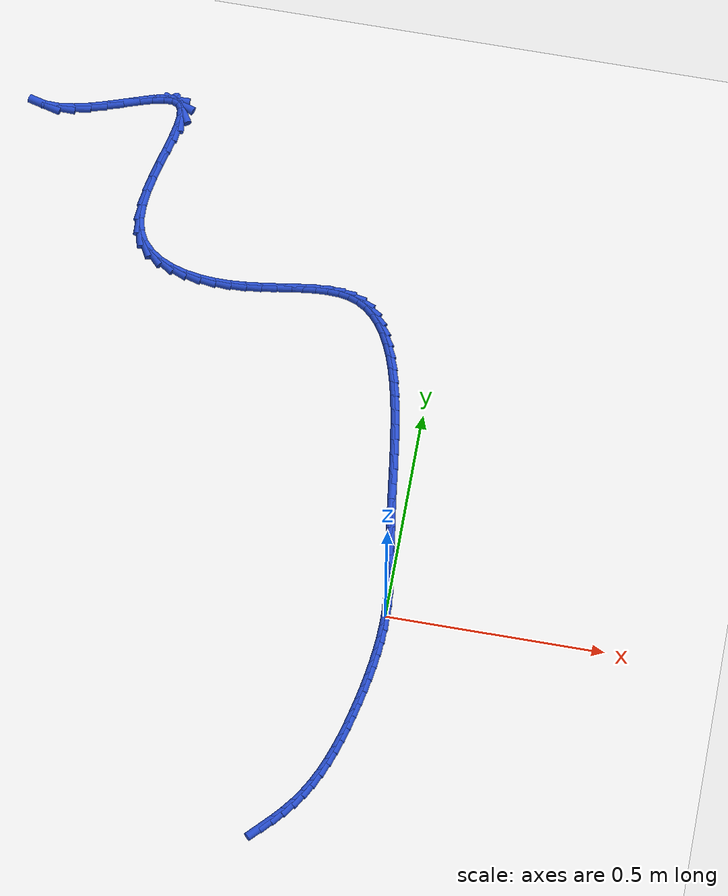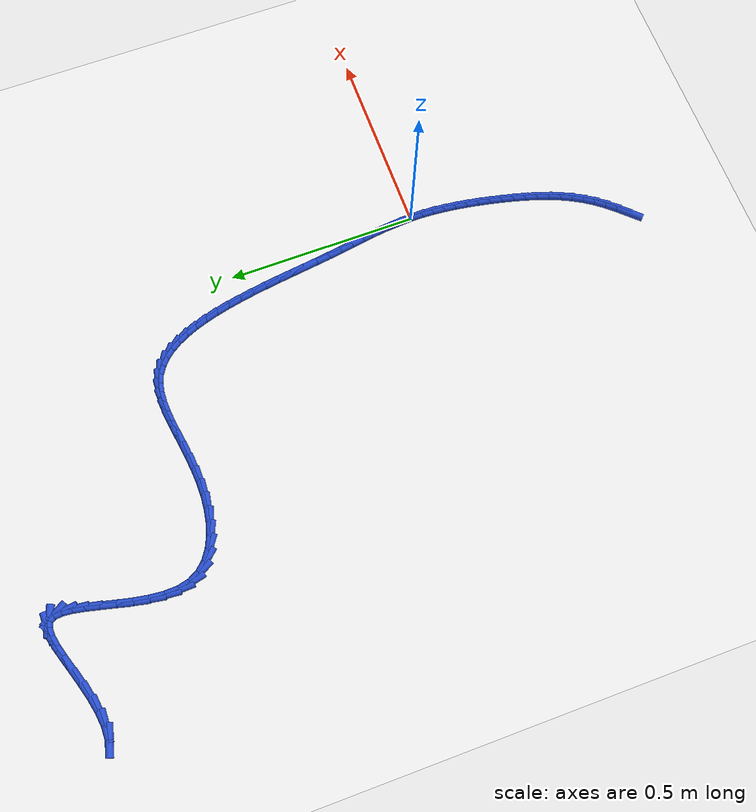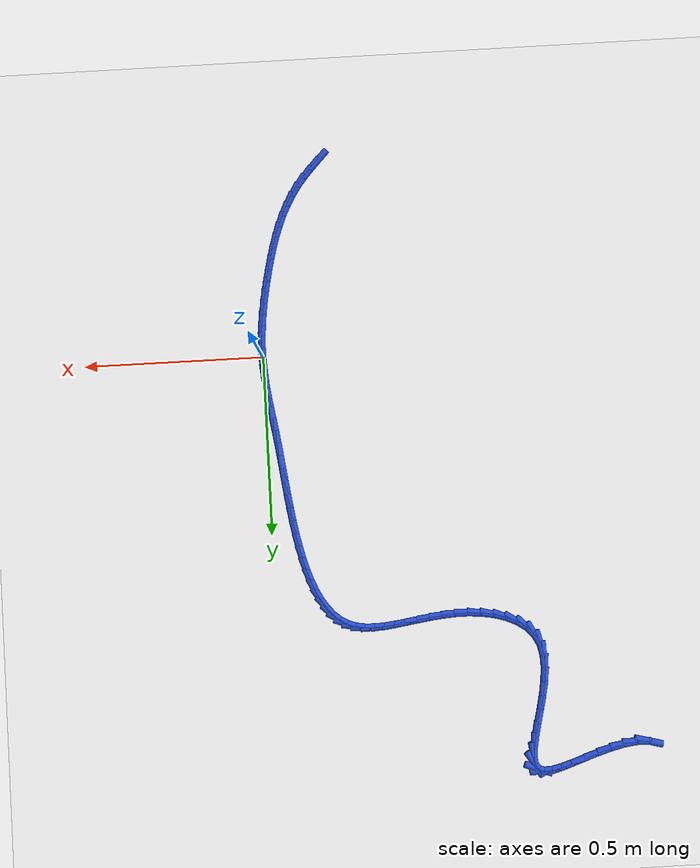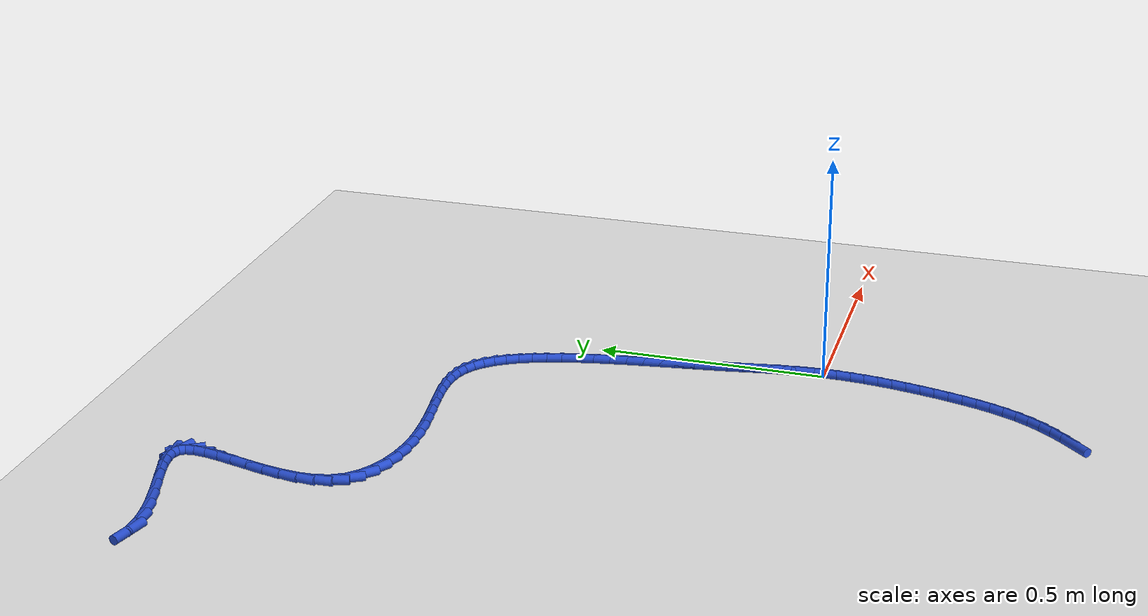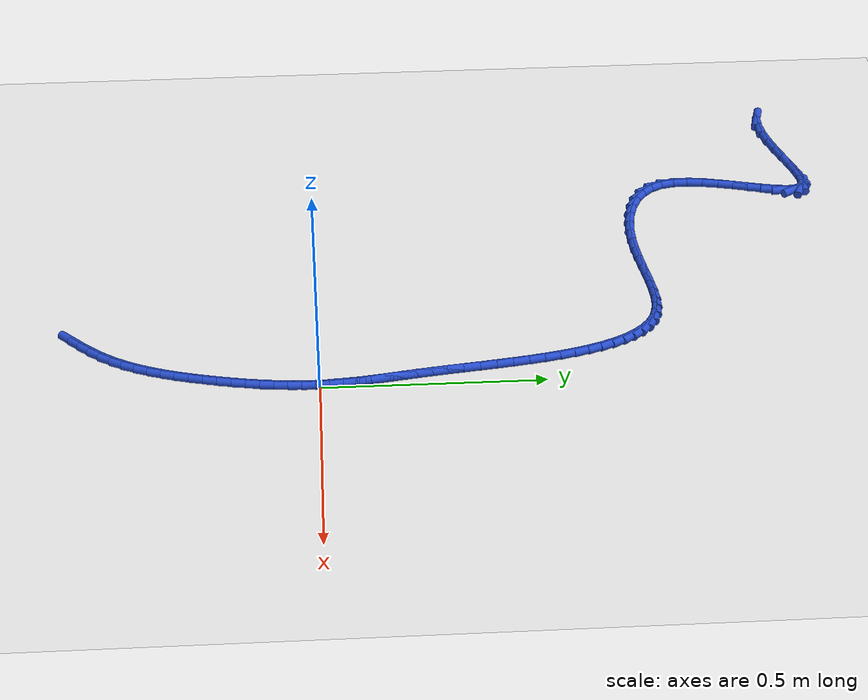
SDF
<sdf version="1.6">
 <world name="default">
  <model name="ground_plane">
   <static>1</static>
   <link name="link">
    <collision name="collision">
     <geometry><plane><normal>0 0 1</normal><size>100 100</size></plane></geometry>
     <surface><friction><ode><mu>100</mu><mu2>50</mu2></ode></friction></surface>
    </collision>
    <visual name="visual">
     <cast_shadows>0</cast_shadows>
     <geometry><plane><normal>0 0 1</normal><size>100 100</size></plane></geometry>
     <material>
      <script><uri>file://media/materials/scripts/gazebo.material</uri><name>Gazebo/WhiteGlow</name></script>
     </material>
    </visual>
   </link>
  </model>
  <model name="line">
   <link name="link_0">
    <pose>-8.673617379884035e-19 -2.7755575615628914e-17 0.01 0 1.57 -1.5309838442177583</pose>
    <collision name="collision">
     <geometry><cylinder><radius>0.01</radius><length>0.08</length></cylinder></geometry>
    </collision>
    <visual name="visual">
     <material>
      <script><name>Gazebo/Blue</name><uri>file://media/materials/scripts/gazebo.material</uri></script>
     </material>
     <geometry><cylinder><radius>0.01</radius><length>0.08</length></cylinder></geometry>
    </visual>
   </link>
   <link name="link_1">
    <pose>-0.0011920634587532983 0.029926131072168582 0.01 0 1.57 -1.4918122423101186</pose>
    <collision name="collision">
     <geometry><cylinder><radius>0.01</radius><length>0.08</length></cylinder></geometry>
    </collision>
    <visual name="visual">
     <material>
      <script><name>Gazebo/Blue</name><uri>file://media/materials/scripts/gazebo.material</uri></script>
     </material>
     <geometry><cylinder><radius>0.01</radius><length>0.08</length></cylinder></geometry>
    </visual>
   </link>
   <link name="link_2">
    <pose>-0.0035493573256430194 0.05970921789289432 0.01 0 1.57 -1.460404947082637</pose>
    <collision name="collision">
     <geometry><cylinder><radius>0.01</radius><length>0.08</length></cylinder></geometry>
    </collision>
    <visual name="visual">
     <material>
      <script><name>Gazebo/Blue</name><uri>file://media/materials/scripts/gazebo.material</uri></script>
     </material>
     <geometry><cylinder><radius>0.01</radius><length>0.08</length></cylinder></geometry>
    </visual>
   </link>
   <link name="link_3">
    <pose>-0.006859490911630981 0.08957275082644263 0.01 0 1.57 -1.4373247160159335</pose>
    <collision name="collision">
     <geometry><cylinder><radius>0.01</radius><length>0.08</length></cylinder></geometry>
    </collision>
    <visual name="visual">
     <material>
      <script><name>Gazebo/Blue</name><uri>file://media/materials/scripts/gazebo.material</uri></script>
     </material>
     <geometry><cylinder><radius>0.01</radius><length>0.08</length></cylinder></geometry>
    </visual>
   </link>
   <link name="link_4">
    <pose>-0.010910073527679004 0.11974022023707893 0.01 0 1.57 -1.4227219335134345</pose>
    <collision name="collision">
     <geometry><cylinder><radius>0.01</radius><length>0.08</length></cylinder></geometry>
    </collision>
    <visual name="visual">
     <material>
      <script><name>Gazebo/Blue</name><uri>file://media/materials/scripts/gazebo.material</uri></script>
     </material>
     <geometry><cylinder><radius>0.01</radius><length>0.08</length></cylinder></geometry>
    </visual>
   </link>
   <link name="link_5">
    <pose>-0.015488714484748891 0.15043511648906868 0.01 0 1.57 -1.4163925502797046</pose>
    <collision name="collision">
     <geometry><cylinder><radius>0.01</radius><length>0.08</length></cylinder></geometry>
    </collision>
    <visual name="visual">
     <material>
      <script><name>Gazebo/Blue</name><uri>file://media/materials/scripts/gazebo.material</uri></script>
     </material>
     <geometry><cylinder><radius>0.01</radius><length>0.08</length></cylinder></geometry>
    </visual>
   </link>
   <link name="link_6">
    <pose>-0.020383023093802466 0.18188092994667726 0.01 0 1.57 -1.4178499350377</pose>
    <collision name="collision">
     <geometry><cylinder><radius>0.01</radius><length>0.08</length></cylinder></geometry>
    </collision>
    <visual name="visual">
     <material>
      <script><name>Gazebo/Blue</name><uri>file://media/materials/scripts/gazebo.material</uri></script>
     </material>
     <geometry><cylinder><radius>0.01</radius><length>0.08</length></cylinder></geometry>
    </visual>
   </link>
   <link name="link_7">
    <pose>-0.025380608665801545 0.2143011509741702 0.01 0 1.57 -1.4263627147588707</pose>
    <collision name="collision">
     <geometry><cylinder><radius>0.01</radius><length>0.08</length></cylinder></geometry>
    </collision>
    <visual name="visual">
     <material>
      <script><name>Gazebo/Blue</name><uri>file://media/materials/scripts/gazebo.material</uri></script>
     </material>
     <geometry><cylinder><radius>0.01</radius><length>0.08</length></cylinder></geometry>
    </visual>
   </link>
   <link name="link_8">
    <pose>-0.030270033205655977 0.24791782477390206 0.01 0 1.57 -1.4372842359377562</pose>
    <collision name="collision">
     <geometry><cylinder><radius>0.01</radius><length>0.08</length></cylinder></geometry>
    </collision>
    <visual name="visual">
     <material>
      <script><name>Gazebo/Blue</name><uri>file://media/materials/scripts/gazebo.material</uri></script>
     </material>
     <geometry><cylinder><radius>0.01</radius><length>0.08</length></cylinder></geometry>
    </visual>
   </link>
   <link name="link_9">
    <pose>-0.034952662818050914 0.2827818815865925 0.01 0 1.57 -1.4432561508847164</pose>
    <collision name="collision">
     <geometry><cylinder><radius>0.01</radius><length>0.08</length></cylinder></geometry>
    </collision>
    <visual name="visual">
     <material>
      <script><name>Gazebo/Blue</name><uri>file://media/materials/scripts/gazebo.material</uri></script>
     </material>
     <geometry><cylinder><radius>0.01</radius><length>0.08</length></cylinder></geometry>
    </visual>
   </link>
   <link name="link_10">
    <pose>-0.03954762887872493 0.3186139188363698 0.01 0 1.57 -1.443988752042576</pose>
    <collision name="collision">
     <geometry><cylinder><radius>0.01</radius><length>0.08</length></cylinder></geometry>
    </collision>
    <visual name="visual">
     <material>
      <script><name>Gazebo/Blue</name><uri>file://media/materials/scripts/gazebo.material</uri></script>
     </material>
     <geometry><cylinder><radius>0.01</radius><length>0.08</length></cylinder></geometry>
    </visual>
   </link>
   <link name="link_11">
    <pose>-0.04419889976410217 0.35509685816759995 0.01 0 1.57 -1.4397758154121778</pose>
    <collision name="collision">
     <geometry><cylinder><radius>0.01</radius><length>0.08</length></cylinder></geometry>
    </collision>
    <visual name="visual">
     <material>
      <script><name>Gazebo/Blue</name><uri>file://media/materials/scripts/gazebo.material</uri></script>
     </material>
     <geometry><cylinder><radius>0.01</radius><length>0.08</length></cylinder></geometry>
    </visual>
   </link>
   <link name="link_12">
    <pose>-0.04905044385060673 0.3919136212246486 0.01 0 1.57 -1.4306595569260248</pose>
    <collision name="collision">
     <geometry><cylinder><radius>0.01</radius><length>0.08</length></cylinder></geometry>
    </collision>
    <visual name="visual">
     <material>
      <script><name>Gazebo/Blue</name><uri>file://media/materials/scripts/gazebo.material</uri></script>
     </material>
     <geometry><cylinder><radius>0.01</radius><length>0.08</length></cylinder></geometry>
    </visual>
   </link>
   <link name="link_13">
    <pose>-0.05424622951466277 0.42874712965188194 0.01 0 1.57 -1.416449296171307</pose>
    <collision name="collision">
     <geometry><cylinder><radius>0.01</radius><length>0.08</length></cylinder></geometry>
    </collision>
    <visual name="visual">
     <material>
      <script><name>Gazebo/Blue</name><uri>file://media/materials/scripts/gazebo.material</uri></script>
     </material>
     <geometry><cylinder><radius>0.01</radius><length>0.08</length></cylinder></geometry>
    </visual>
   </link>
   <link name="link_14">
    <pose>-0.05993022513269442 0.4652803050936658 0.01 0 1.57 -1.3967155898508188</pose>
    <collision name="collision">
     <geometry><cylinder><radius>0.01</radius><length>0.08</length></cylinder></geometry>
    </collision>
    <visual name="visual">
     <material>
      <script><name>Gazebo/Blue</name><uri>file://media/materials/scripts/gazebo.material</uri></script>
     </material>
     <geometry><cylinder><radius>0.01</radius><length>0.08</length></cylinder></geometry>
    </visual>
   </link>
   <link name="link_15">
    <pose>-0.06624639908112581 0.5011960691943661 0.01 0 1.57 -1.3707615844870331</pose>
    <collision name="collision">
     <geometry><cylinder><radius>0.01</radius><length>0.08</length></cylinder></geometry>
    </collision>
    <visual name="visual">
     <material>
      <script><name>Gazebo/Blue</name><uri>file://media/materials/scripts/gazebo.material</uri></script>
     </material>
     <geometry><cylinder><radius>0.01</radius><length>0.08</length></cylinder></geometry>
    </visual>
   </link>
   <link name="link_16">
    <pose>-0.07333871973638105 0.5361773435983487 0.01 0 1.57 -1.3375707681272881</pose>
    <collision name="collision">
     <geometry><cylinder><radius>0.01</radius><length>0.08</length></cylinder></geometry>
    </collision>
    <visual name="visual">
     <material>
      <script><name>Gazebo/Blue</name><uri>file://media/materials/scripts/gazebo.material</uri></script>
     </material>
     <geometry><cylinder><radius>0.01</radius><length>0.08</length></cylinder></geometry>
    </visual>
   </link>
   <link name="link_17">
    <pose>-0.08135115547488428 0.5699070499499793 0.01 0 1.57 -1.2957294912012003</pose>
    <collision name="collision">
     <geometry><cylinder><radius>0.01</radius><length>0.08</length></cylinder></geometry>
    </collision>
    <visual name="visual">
     <material>
      <script><name>Gazebo/Blue</name><uri>file://media/materials/scripts/gazebo.material</uri></script>
     </material>
     <geometry><cylinder><radius>0.01</radius><length>0.08</length></cylinder></geometry>
    </visual>
   </link>
   <link name="link_18">
    <pose>-0.09042767467305962 0.602068109893624 0.01 0 1.57 -1.2433255833330956</pose>
    <collision name="collision">
     <geometry><cylinder><radius>0.01</radius><length>0.08</length></cylinder></geometry>
    </collision>
    <visual name="visual">
     <material>
      <script><name>Gazebo/Blue</name><uri>file://media/materials/scripts/gazebo.material</uri></script>
     </material>
     <geometry><cylinder><radius>0.01</radius><length>0.08</length></cylinder></geometry>
    </visual>
   </link>
   <link name="link_19">
    <pose>-0.10071224570733121 0.6323434450736488 0.01 0 1.57 -1.177836768705247</pose>
    <collision name="collision">
     <geometry><cylinder><radius>0.01</radius><length>0.08</length></cylinder></geometry>
    </collision>
    <visual name="visual">
     <material>
      <script><name>Gazebo/Blue</name><uri>file://media/materials/scripts/gazebo.material</uri></script>
     </material>
     <geometry><cylinder><radius>0.01</radius><length>0.08</length></cylinder></geometry>
    </visual>
   </link>
   <link name="link_20">
    <pose>-0.1123488369541232 0.6604159771344196 0.01 0 1.57 -1.0960574448967841</pose>
    <collision name="collision">
     <geometry><cylinder><radius>0.01</radius><length>0.08</length></cylinder></geometry>
    </collision>
    <visual name="visual">
     <material>
      <script><name>Gazebo/Blue</name><uri>file://media/materials/scripts/gazebo.material</uri></script>
     </material>
     <geometry><cylinder><radius>0.01</radius><length>0.08</length></cylinder></geometry>
    </visual>
   </link>
   <link name="link_21">
    <pose>-0.12548141678985966 0.685968627720302 0.01 0 1.57 -0.9941940548268737</pose>
    <collision name="collision">
     <geometry><cylinder><radius>0.01</radius><length>0.08</length></cylinder></geometry>
    </collision>
    <visual name="visual">
     <material>
      <script><name>Gazebo/Blue</name><uri>file://media/materials/scripts/gazebo.material</uri></script>
     </material>
     <geometry><cylinder><radius>0.01</radius><length>0.08</length></cylinder></geometry>
    </visual>
   </link>
   <link name="link_22">
    <pose>-0.1402539535909648 0.7086843184756622 0.01 0 1.57 -0.8684114697376889</pose>
    <collision name="collision">
     <geometry><cylinder><radius>0.01</radius><length>0.08</length></cylinder></geometry>
    </collision>
    <visual name="visual">
     <material>
      <script><name>Gazebo/Blue</name><uri>file://media/materials/scripts/gazebo.material</uri></script>
     </material>
     <geometry><cylinder><radius>0.01</radius><length>0.08</length></cylinder></geometry>
    </visual>
   </link>
   <link name="link_23">
    <pose>-0.15681041573386267 0.7282459710448659 0.01 0 1.57 -0.716272689196708</pose>
    <collision name="collision">
     <geometry><cylinder><radius>0.01</radius><length>0.08</length></cylinder></geometry>
    </collision>
    <visual name="visual">
     <material>
      <script><name>Gazebo/Blue</name><uri>file://media/materials/scripts/gazebo.material</uri></script>
     </material>
     <geometry><cylinder><radius>0.01</radius><length>0.08</length></cylinder></geometry>
    </visual>
   </link>
   <link name="link_24">
    <pose>-0.17529477159497744 0.7443365070722793 0.01 0 1.57 -0.5392959390188768</pose>
    <collision name="collision">
     <geometry><cylinder><radius>0.01</radius><length>0.08</length></cylinder></geometry>
    </collision>
    <visual name="visual">
     <material>
      <script><name>Gazebo/Blue</name><uri>file://media/materials/scripts/gazebo.material</uri></script>
     </material>
     <geometry><cylinder><radius>0.01</radius><length>0.08</length></cylinder></geometry>
    </visual>
   </link>
   <link name="link_25">
    <pose>-0.19585098955073327 0.756638848202268 0.01 0 1.57 -0.34677644705494926</pose>
    <collision name="collision">
     <geometry><cylinder><radius>0.01</radius><length>0.08</length></cylinder></geometry>
    </collision>
    <visual name="visual">
     <material>
      <script><name>Gazebo/Blue</name><uri>file://media/materials/scripts/gazebo.material</uri></script>
     </material>
     <geometry><cylinder><radius>0.01</radius><length>0.08</length></cylinder></geometry>
    </visual>
   </link>
   <link name="link_26">
    <pose>-0.21861303366019633 0.7648645888249331 0.01 0 1.57 -0.17357291917160803</pose>
    <collision name="collision">
     <geometry><cylinder><radius>0.01</radius><length>0.08</length></cylinder></geometry>
    </collision>
    <visual name="visual">
     <material>
      <script><name>Gazebo/Blue</name><uri>file://media/materials/scripts/gazebo.material</uri></script>
     </material>
     <geometry><cylinder><radius>0.01</radius><length>0.08</length></cylinder></geometry>
    </visual>
   </link>
   <link name="link_27">
    <pose>-0.24353713478854908 0.7692347132762082 0.01 0 1.57 -0.043605174973667386</pose>
    <collision name="collision">
     <geometry><cylinder><radius>0.01</radius><length>0.08</length></cylinder></geometry>
    </collision>
    <visual name="visual">
     <material>
      <script><name>Gazebo/Blue</name><uri>file://media/materials/scripts/gazebo.material</uri></script>
     </material>
     <geometry><cylinder><radius>0.01</radius><length>0.08</length></cylinder></geometry>
    </visual>
   </link>
   <link name="link_28">
    <pose>-0.2704267767794843 0.7704079845382207 0.01 0 1.57 0.04709943094118942</pose>
    <collision name="collision">
     <geometry><cylinder><radius>0.01</radius><length>0.08</length></cylinder></geometry>
    </collision>
    <visual name="visual">
     <material>
      <script><name>Gazebo/Blue</name><uri>file://media/materials/scripts/gazebo.material</uri></script>
     </material>
     <geometry><cylinder><radius>0.01</radius><length>0.08</length></cylinder></geometry>
    </visual>
   </link>
   <link name="link_29">
    <pose>-0.2990804723767562 0.7690574129504607 0.01 0 1.57 0.10555591531187349</pose>
    <collision name="collision">
     <geometry><cylinder><radius>0.01</radius><length>0.08</length></cylinder></geometry>
    </collision>
    <visual name="visual">
     <material>
      <script><name>Gazebo/Blue</name><uri>file://media/materials/scripts/gazebo.material</uri></script>
     </material>
     <geometry><cylinder><radius>0.01</radius><length>0.08</length></cylinder></geometry>
    </visual>
   </link>
   <link name="link_30">
    <pose>-0.32929673432411916 0.7658560088524181 0.01 0 1.57 0.13780358688289648</pose>
    <collision name="collision">
     <geometry><cylinder><radius>0.01</radius><length>0.08</length></cylinder></geometry>
    </collision>
    <visual name="visual">
     <material>
      <script><name>Gazebo/Blue</name><uri>file://media/materials/scripts/gazebo.material</uri></script>
     </material>
     <geometry><cylinder><radius>0.01</radius><length>0.08</length></cylinder></geometry>
    </visual>
   </link>
   <link name="link_31">
    <pose>-0.36087407536532773 0.7614767825835832 0.01 0 1.57 0.14809812832370803</pose>
    <collision name="collision">
     <geometry><cylinder><radius>0.01</radius><length>0.08</length></cylinder></geometry>
    </collision>
    <visual name="visual">
     <material>
      <script><name>Gazebo/Blue</name><uri>file://media/materials/scripts/gazebo.material</uri></script>
     </material>
     <geometry><cylinder><radius>0.01</radius><length>0.08</length></cylinder></geometry>
    </visual>
   </link>
   <link name="link_32">
    <pose>-0.393611008244136 0.7565927444834457 0.01 0 1.57 0.1390532798144031</pose>
    <collision name="collision">
     <geometry><cylinder><radius>0.01</radius><length>0.08</length></cylinder></geometry>
    </collision>
    <visual name="visual">
     <material>
      <script><name>Gazebo/Blue</name><uri>file://media/materials/scripts/gazebo.material</uri></script>
     </material>
     <geometry><cylinder><radius>0.01</radius><length>0.08</length></cylinder></geometry>
    </visual>
   </link>
   <link name="link_33">
    <pose>-0.4273060457042981 0.7518769048914955 0.01 0 1.57 0.11199512746065339</pose>
    <collision name="collision">
     <geometry><cylinder><radius>0.01</radius><length>0.08</length></cylinder></geometry>
    </collision>
    <visual name="visual">
     <material>
      <script><name>Gazebo/Blue</name><uri>file://media/materials/scripts/gazebo.material</uri></script>
     </material>
     <geometry><cylinder><radius>0.01</radius><length>0.08</length></cylinder></geometry>
    </visual>
   </link>
   <link name="link_34">
    <pose>-0.4617577004895692 0.748002274147223 0.01 0 1.57 0.06732535251456545</pose>
    <collision name="collision">
     <geometry><cylinder><radius>0.01</radius><length>0.08</length></cylinder></geometry>
    </collision>
    <visual name="visual">
     <material>
      <script><name>Gazebo/Blue</name><uri>file://media/materials/scripts/gazebo.material</uri></script>
     </material>
     <geometry><cylinder><radius>0.01</radius><length>0.08</length></cylinder></geometry>
    </visual>
   </link>
   <link name="link_35">
    <pose>-0.4967644853437031 0.7456418625901178 0.01 0 1.57 0.004897583462820806</pose>
    <collision name="collision">
     <geometry><cylinder><radius>0.01</radius><length>0.08</length></cylinder></geometry>
    </collision>
    <visual name="visual">
     <material>
      <script><name>Gazebo/Blue</name><uri>file://media/materials/scripts/gazebo.material</uri></script>
     </material>
     <geometry><cylinder><radius>0.01</radius><length>0.08</length></cylinder></geometry>
    </visual>
   </link>
   <link name="link_36">
    <pose>-0.532124913010454 0.7454686805596699 0.01 0 1.57 -0.0751768790568628</pose>
    <collision name="collision">
     <geometry><cylinder><radius>0.01</radius><length>0.08</length></cylinder></geometry>
    </collision>
    <visual name="visual">
     <material>
      <script><name>Gazebo/Blue</name><uri>file://media/materials/scripts/gazebo.material</uri></script>
     </material>
     <geometry><cylinder><radius>0.01</radius><length>0.08</length></cylinder></geometry>
    </visual>
   </link>
   <link name="link_37">
    <pose>-0.5676006343412286 0.7481406701083774 0.01 0 1.57 -0.16946726879782714</pose>
    <collision name="collision">
     <geometry><cylinder><radius>0.01</radius><length>0.08</length></cylinder></geometry>
    </collision>
    <visual name="visual">
     <material>
      <script><name>Gazebo/Blue</name><uri>file://media/materials/scripts/gazebo.material</uri></script>
     </material>
     <geometry><cylinder><radius>0.01</radius><length>0.08</length></cylinder></geometry>
    </visual>
   </link>
   <link name="link_38">
    <pose>-0.6024233030745086 0.7540991227563392 0.01 0 1.57 -0.2809337188770969</pose>
    <collision name="collision">
     <geometry><cylinder><radius>0.01</radius><length>0.08</length></cylinder></geometry>
    </collision>
    <visual name="visual">
     <material>
      <script><name>Gazebo/Blue</name><uri>file://media/materials/scripts/gazebo.material</uri></script>
     </material>
     <geometry><cylinder><radius>0.01</radius><length>0.08</length></cylinder></geometry>
    </visual>
   </link>
   <link name="link_39">
    <pose>-0.6354273361624305 0.7636229488348666 0.01 0 1.57 -0.41895626845242995</pose>
    <collision name="collision">
     <geometry><cylinder><radius>0.01</radius><length>0.08</length></cylinder></geometry>
    </collision>
    <visual name="visual">
     <material>
      <script><name>Gazebo/Blue</name><uri>file://media/materials/scripts/gazebo.material</uri></script>
     </material>
     <geometry><cylinder><radius>0.01</radius><length>0.08</length></cylinder></geometry>
    </visual>
   </link>
   <link name="link_40">
    <pose>-0.665437534666611 0.7769871279221601 0.01 0 1.57 -0.5947253696957779</pose>
    <collision name="collision">
     <geometry><cylinder><radius>0.01</radius><length>0.08</length></cylinder></geometry>
    </collision>
    <visual name="visual">
     <material>
      <script><name>Gazebo/Blue</name><uri>file://media/materials/scripts/gazebo.material</uri></script>
     </material>
     <geometry><cylinder><radius>0.01</radius><length>0.08</length></cylinder></geometry>
    </visual>
   </link>
   <link name="link_41">
    <pose>-0.6912786996486677 0.7944666395964205 0.01 0 1.57 -0.8177917471947918</pose>
    <collision name="collision">
     <geometry><cylinder><radius>0.01</radius><length>0.08</length></cylinder></geometry>
    </collision>
    <visual name="visual">
     <material>
      <script><name>Gazebo/Blue</name><uri>file://media/materials/scripts/gazebo.material</uri></script>
     </material>
     <geometry><cylinder><radius>0.01</radius><length>0.08</length></cylinder></geometry>
    </visual>
   </link>
   <link name="link_42">
    <pose>-0.7117756321702178 0.8163364634358485 0.01 0 1.57 -1.0858686030148896</pose>
    <collision name="collision">
     <geometry><cylinder><radius>0.01</radius><length>0.08</length></cylinder></geometry>
    </collision>
    <visual name="visual">
     <material>
      <script><name>Gazebo/Blue</name><uri>file://media/materials/scripts/gazebo.material</uri></script>
     </material>
     <geometry><cylinder><radius>0.01</radius><length>0.08</length></cylinder></geometry>
    </visual>
   </link>
   <link name="link_43">
    <pose>-0.7257558929972162 0.842869994935702 0.01 0 1.57 -1.349795668924358</pose>
    <collision name="collision">
     <geometry><cylinder><radius>0.01</radius><length>0.08</length></cylinder></geometry>
    </collision>
    <visual name="visual">
     <material>
      <script><name>Gazebo/Blue</name><uri>file://media/materials/scripts/gazebo.material</uri></script>
     </material>
     <geometry><cylinder><radius>0.01</radius><length>0.08</length></cylinder></geometry>
    </visual>
   </link>
   <link name="link_44">
    <pose>-0.7327373839717425 0.8739443706485378 0.01 0 1.57 -1.5391064750870342</pose>
    <collision name="collision">
     <geometry><cylinder><radius>0.01</radius><length>0.08</length></cylinder></geometry>
    </collision>
    <visual name="visual">
     <material>
      <script><name>Gazebo/Blue</name><uri>file://media/materials/scripts/gazebo.material</uri></script>
     </material>
     <geometry><cylinder><radius>0.01</radius><length>0.08</length></cylinder></geometry>
    </visual>
   </link>
   <link name="link_45">
    <pose>-0.7338334766400432 0.9085209202019734 0.01 0 1.57 1.4775661834523324</pose>
    <collision name="collision">
     <geometry><cylinder><radius>0.01</radius><length>0.08</length></cylinder></geometry>
    </collision>
    <visual name="visual">
     <material>
      <script><name>Gazebo/Blue</name><uri>file://media/materials/scripts/gazebo.material</uri></script>
     </material>
     <geometry><cylinder><radius>0.01</radius><length>0.08</length></cylinder></geometry>
    </visual>
   </link>
   <link name="link_46">
    <pose>-0.7303822471487614 0.9454319917527966 0.01 0 1.57 1.3976312926035983</pose>
    <collision name="collision">
     <geometry><cylinder><radius>0.01</radius><length>0.08</length></cylinder></geometry>
    </collision>
    <visual name="visual">
     <material>
      <script><name>Gazebo/Blue</name><uri>file://media/materials/scripts/gazebo.material</uri></script>
     </material>
     <geometry><cylinder><radius>0.01</radius><length>0.08</length></cylinder></geometry>
    </visual>
   </link>
   <link name="link_47">
    <pose>-0.7237217716445401 0.9835099334577941 0.01 0 1.57 1.3503748469150667</pose>
    <collision name="collision">
     <geometry><cylinder><radius>0.01</radius><length>0.08</length></cylinder></geometry>
    </collision>
    <visual name="visual">
     <material>
      <script><name>Gazebo/Blue</name><uri>file://media/materials/scripts/gazebo.material</uri></script>
     </material>
     <geometry><cylinder><radius>0.01</radius><length>0.08</length></cylinder></geometry>
    </visual>
   </link>
   <link name="link_48">
    <pose>-0.7151901262740218 1.0215870934737539 0.01 0 1.57 1.329964235913607</pose>
    <collision name="collision">
     <geometry><cylinder><radius>0.01</radius><length>0.08</length></cylinder></geometry>
    </collision>
    <visual name="visual">
     <material>
      <script><name>Gazebo/Blue</name><uri>file://media/materials/scripts/gazebo.material</uri></script>
     </material>
     <geometry><cylinder><radius>0.01</radius><length>0.08</length></cylinder></geometry>
    </visual>
   </link>
   <link name="link_49">
    <pose>-0.7061253871838494 1.0584958199574621 0.01 0 1.57 1.3362820452198823</pose>
    <collision name="collision">
     <geometry><cylinder><radius>0.01</radius><length>0.08</length></cylinder></geometry>
    </collision>
    <visual name="visual">
     <material>
      <script><name>Gazebo/Blue</name><uri>file://media/materials/scripts/gazebo.material</uri></script>
     </material>
     <geometry><cylinder><radius>0.01</radius><length>0.08</length></cylinder></geometry>
    </visual>
   </link>
   <link name="link_50">
    <pose>-0.6978656305206656 1.0930684610657073 0.01 0 1.57 1.3764071358228145</pose>
    <collision name="collision">
     <geometry><cylinder><radius>0.01</radius><length>0.08</length></cylinder></geometry>
    </collision>
    <visual name="visual">
     <material>
      <script><name>Gazebo/Blue</name><uri>file://media/materials/scripts/gazebo.material</uri></script>
     </material>
     <geometry><cylinder><radius>0.01</radius><length>0.08</length></cylinder></geometry>
    </visual>
   </link>
   <link name="link_51">
    <pose>-0.6917489324311131 1.1241373649552766 0.01 0 1.57 1.4712847615201314</pose>
    <collision name="collision">
     <geometry><cylinder><radius>0.01</radius><length>0.08</length></cylinder></geometry>
    </collision>
    <visual name="visual">
     <material>
      <script><name>Gazebo/Blue</name><uri>file://media/materials/scripts/gazebo.material</uri></script>
     </material>
     <geometry><cylinder><radius>0.01</radius><length>0.08</length></cylinder></geometry>
    </visual>
   </link>
   <link name="link_52">
    <pose>-0.689113369061835 1.1505348797829569 0.01 0 1.57 -1.4649766666540844</pose>
    <collision name="collision">
     <geometry><cylinder><radius>0.01</radius><length>0.08</length></cylinder></geometry>
    </collision>
    <visual name="visual">
     <material>
      <script><name>Gazebo/Blue</name><uri>file://media/materials/scripts/gazebo.material</uri></script>
     </material>
     <geometry><cylinder><radius>0.01</radius><length>0.08</length></cylinder></geometry>
    </visual>
   </link>
   <link name="link_53">
    <pose>-0.6912970165594738 1.1710933537055352 0.01 0 1.57 -1.0190676660068214</pose>
    <collision name="collision">
     <geometry><cylinder><radius>0.01</radius><length>0.08</length></cylinder></geometry>
    </collision>
    <visual name="visual">
     <material>
      <script><name>Gazebo/Blue</name><uri>file://media/materials/scripts/gazebo.material</uri></script>
     </material>
     <geometry><cylinder><radius>0.01</radius><length>0.08</length></cylinder></geometry>
    </visual>
   </link>
   <link name="link_54">
    <pose>-0.6996379509443508 1.1846451350189793 0.01 0 1.57 -0.36168302062955593</pose>
    <collision name="collision">
     <geometry><cylinder><radius>0.01</radius><length>0.08</length></cylinder></geometry>
    </collision>
    <visual name="visual">
     <material>
      <script><name>Gazebo/Blue</name><uri>file://media/materials/scripts/gazebo.material</uri></script>
     </material>
     <geometry><cylinder><radius>0.01</radius><length>0.08</length></cylinder></geometry>
    </visual>
   </link>
   <link name="link_55">
    <pose>-0.7150595227192715 1.1904795095031495 0.01 0 1.57 0.0368072957396625</pose>
    <collision name="collision">
     <geometry><cylinder><radius>0.01</radius><length>0.08</length></cylinder></geometry>
    </collision>
    <visual name="visual">
     <material>
      <script><name>Gazebo/Blue</name><uri>file://media/materials/scripts/gazebo.material</uri></script>
     </material>
     <geometry><cylinder><radius>0.01</radius><length>0.08</length></cylinder></geometry>
    </visual>
   </link>
   <link name="link_56">
    <pose>-0.7368595498400109 1.1896767469035965 0.01 0 1.57 0.21527165208525095</pose>
    <collision name="collision">
     <geometry><cylinder><radius>0.01</radius><length>0.08</length></cylinder></geometry>
    </collision>
    <visual name="visual">
     <material>
      <script><name>Gazebo/Blue</name><uri>file://media/materials/scripts/gazebo.material</uri></script>
     </material>
     <geometry><cylinder><radius>0.01</radius><length>0.08</length></cylinder></geometry>
    </visual>
   </link>
   <link name="link_57">
    <pose>-0.7639376423660004 1.1837558556171897 0.01 0 1.57 0.29565711391072097</pose>
    <collision name="collision">
     <geometry><cylinder><radius>0.01</radius><length>0.08</length></cylinder></geometry>
    </collision>
    <visual name="visual">
     <material>
      <script><name>Gazebo/Blue</name><uri>file://media/materials/scripts/gazebo.material</uri></script>
     </material>
     <geometry><cylinder><radius>0.01</radius><length>0.08</length></cylinder></geometry>
    </visual>
   </link>
   <link name="link_58">
    <pose>-0.7951934103566707 1.1742358440407985 0.01 0 1.57 0.3258283661167217</pose>
    <collision name="collision">
     <geometry><cylinder><radius>0.01</radius><length>0.08</length></cylinder></geometry>
    </collision>
    <visual name="visual">
     <material>
      <script><name>Gazebo/Blue</name><uri>file://media/materials/scripts/gazebo.material</uri></script>
     </material>
     <geometry><cylinder><radius>0.01</radius><length>0.08</length></cylinder></geometry>
    </visual>
   </link>
   <link name="link_59">
    <pose>-0.8295264638714522 1.1626357205712932 0.01 0 1.57 0.32318527351842097</pose>
    <collision name="collision">
     <geometry><cylinder><radius>0.01</radius><length>0.08</length></cylinder></geometry>
    </collision>
    <visual name="visual">
     <material>
      <script><name>Gazebo/Blue</name><uri>file://media/materials/scripts/gazebo.material</uri></script>
     </material>
     <geometry><cylinder><radius>0.01</radius><length>0.08</length></cylinder></geometry>
    </visual>
   </link>
   <link name="link_60">
    <pose>-0.8658364129697762 1.1504744936055442 0.01 0 1.57 0.29262544058438467</pose>
    <collision name="collision">
     <geometry><cylinder><radius>0.01</radius><length>0.08</length></cylinder></geometry>
    </collision>
    <visual name="visual">
     <material>
      <script><name>Gazebo/Blue</name><uri>file://media/materials/scripts/gazebo.material</uri></script>
     </material>
     <geometry><cylinder><radius>0.01</radius><length>0.08</length></cylinder></geometry>
    </visual>
   </link>
   <link name="link_61">
    <pose>-0.9030228677110735 1.139271171540421 0.01 0 1.57 0.23184249930451575</pose>
    <collision name="collision">
     <geometry><cylinder><radius>0.01</radius><length>0.08</length></cylinder></geometry>
    </collision>
    <visual name="visual">
     <material>
      <script><name>Gazebo/Blue</name><uri>file://media/materials/scripts/gazebo.material</uri></script>
     </material>
     <geometry><cylinder><radius>0.01</radius><length>0.08</length></cylinder></geometry>
    </visual>
   </link>
   <link name="link_62">
    <pose>-0.9399854381547748 1.1305447627727925 0.01 0 1.57 0.13196464720542928</pose>
    <collision name="collision">
     <geometry><cylinder><radius>0.01</radius><length>0.08</length></cylinder></geometry>
    </collision>
    <visual name="visual">
     <material>
      <script><name>Gazebo/Blue</name><uri>file://media/materials/scripts/gazebo.material</uri></script>
     </material>
     <geometry><cylinder><radius>0.01</radius><length>0.08</length></cylinder></geometry>
    </visual>
   </link>
   <link name="link_63">
    <pose>-0.9756237343603114 1.1258142756995302 0.01 0 1.57 -0.023613714036213106</pose>
    <collision name="collision">
     <geometry><cylinder><radius>0.01</radius><length>0.08</length></cylinder></geometry>
    </collision>
    <visual name="visual">
     <material>
      <script><name>Gazebo/Blue</name><uri>file://media/materials/scripts/gazebo.material</uri></script>
     </material>
     <geometry><cylinder><radius>0.01</radius><length>0.08</length></cylinder></geometry>
    </visual>
   </link>
   <link name="link_64">
    <pose>-1.0088373663871133 1.126598718717503 0.01 0 1.57 -0.2575000470416673</pose>
    <collision name="collision">
     <geometry><cylinder><radius>0.01</radius><length>0.08</length></cylinder></geometry>
    </collision>
    <visual name="visual">
     <material>
      <script><name>Gazebo/Blue</name><uri>file://media/materials/scripts/gazebo.material</uri></script>
     </material>
     <geometry><cylinder><radius>0.01</radius><length>0.08</length></cylinder></geometry>
    </visual>
   </link>
   <link name="link_241">
    <pose>-0.1836506238045549 -0.5474512371954787 0.01 0 1.57 0.8121200580890915</pose>
    <collision name="collision">
     <geometry><cylinder><radius>0.01</radius><length>0.08</length></cylinder></geometry>
    </collision>
    <visual name="visual">
     <material>
      <script><name>Gazebo/Blue</name><uri>file://media/materials/scripts/gazebo.material</uri></script>
     </material>
     <geometry><cylinder><radius>0.01</radius><length>0.08</length></cylinder></geometry>
    </visual>
   </link>
   <link name="link_242">
    <pose>-0.1622899798363245 -0.5249173694436388 0.01 0 1.57 0.8552882020870788</pose>
    <collision name="collision">
     <geometry><cylinder><radius>0.01</radius><length>0.08</length></cylinder></geometry>
    </collision>
    <visual name="visual">
     <material>
      <script><name>Gazebo/Blue</name><uri>file://media/materials/scripts/gazebo.material</uri></script>
     </material>
     <geometry><cylinder><radius>0.01</radius><length>0.08</length></cylinder></geometry>
    </visual>
   </link>
   <link name="link_243">
    <pose>-0.14206756557597322 -0.5016505310700735 0.01 0 1.57 0.912782444179072</pose>
    <collision name="collision">
     <geometry><cylinder><radius>0.01</radius><length>0.08</length></cylinder></geometry>
    </collision>
    <visual name="visual">
     <material>
      <script><name>Gazebo/Blue</name><uri>file://media/materials/scripts/gazebo.material</uri></script>
     </material>
     <geometry><cylinder><radius>0.01</radius><length>0.08</length></cylinder></geometry>
    </visual>
   </link>
   <link name="link_244">
    <pose>-0.12332633311077575 -0.477403450290131 0.01 0 1.57 0.9841468917848708</pose>
    <collision name="collision">
     <geometry><cylinder><radius>0.01</radius><length>0.08</length></cylinder></geometry>
    </collision>
    <visual name="visual">
     <material>
      <script><name>Gazebo/Blue</name><uri>file://media/materials/scripts/gazebo.material</uri></script>
     </material>
     <geometry><cylinder><radius>0.01</radius><length>0.08</length></cylinder></geometry>
    </visual>
   </link>
   <link name="link_245">
    <pose>-0.1063985296049775 -0.4519371485172997 0.01 0 1.57 1.0584636511911167</pose>
    <collision name="collision">
     <geometry><cylinder><radius>0.01</radius><length>0.08</length></cylinder></geometry>
    </collision>
    <visual name="visual">
     <material>
      <script><name>Gazebo/Blue</name><uri>file://media/materials/scripts/gazebo.material</uri></script>
     </material>
     <geometry><cylinder><radius>0.01</radius><length>0.08</length></cylinder></geometry>
    </visual>
   </link>
   <link name="link_246">
    <pose>-0.09136503489739779 -0.42520738364569105 0.01 0 1.57 1.1247622820728778</pose>
    <collision name="collision">
     <geometry><cylinder><radius>0.01</radius><length>0.08</length></cylinder></geometry>
    </collision>
    <visual name="visual">
     <material>
      <script><name>Gazebo/Blue</name><uri>file://media/materials/scripts/gazebo.material</uri></script>
     </material>
     <geometry><cylinder><radius>0.01</radius><length>0.08</length></cylinder></geometry>
    </visual>
   </link>
   <link name="link_247">
    <pose>-0.07805246432831235 -0.3973668945155597 0.01 0 1.57 1.1825163604227003</pose>
    <collision name="collision">
     <geometry><cylinder><radius>0.01</radius><length>0.08</length></cylinder></geometry>
    </collision>
    <visual name="visual">
     <material>
      <script><name>Gazebo/Blue</name><uri>file://media/materials/scripts/gazebo.material</uri></script>
     </material>
     <geometry><cylinder><radius>0.01</radius><length>0.08</length></cylinder></geometry>
    </visual>
   </link>
   <link name="link_248">
    <pose>-0.0662761488564912 -0.36857716207688707 0.01 0 1.57 1.2319362972353218</pose>
    <collision name="collision">
     <geometry><cylinder><radius>0.01</radius><length>0.08</length></cylinder></geometry>
    </collision>
    <visual name="visual">
     <material>
      <script><name>Gazebo/Blue</name><uri>file://media/materials/scripts/gazebo.material</uri></script>
     </material>
     <geometry><cylinder><radius>0.01</radius><length>0.08</length></cylinder></geometry>
    </visual>
   </link>
   <link name="link_249">
    <pose>-0.05585141944070434 -0.33899966727965514 0.01 0 1.57 1.2733762051685455</pose>
    <collision name="collision">
     <geometry><cylinder><radius>0.01</radius><length>0.08</length></cylinder></geometry>
    </collision>
    <visual name="visual">
     <material>
      <script><name>Gazebo/Blue</name><uri>file://media/materials/scripts/gazebo.material</uri></script>
     </material>
     <geometry><cylinder><radius>0.01</radius><length>0.08</length></cylinder></geometry>
    </visual>
   </link>
   <link name="link_250">
    <pose>-0.04659360703972173 -0.3087958910738455 0.01 0 1.57 1.3072349732946975</pose>
    <collision name="collision">
     <geometry><cylinder><radius>0.01</radius><length>0.08</length></cylinder></geometry>
    </collision>
    <visual name="visual">
     <material>
      <script><name>Gazebo/Blue</name><uri>file://media/materials/scripts/gazebo.material</uri></script>
     </material>
     <geometry><cylinder><radius>0.01</radius><length>0.08</length></cylinder></geometry>
    </visual>
   </link>
   <link name="link_251">
    <pose>-0.038318042612313336 -0.2781273144094397 0.01 0 1.57 1.3338862252367305</pose>
    <collision name="collision">
     <geometry><cylinder><radius>0.01</radius><length>0.08</length></cylinder></geometry>
    </collision>
    <visual name="visual">
     <material>
      <script><name>Gazebo/Blue</name><uri>file://media/materials/scripts/gazebo.material</uri></script>
     </material>
     <geometry><cylinder><radius>0.01</radius><length>0.08</length></cylinder></geometry>
    </visual>
   </link>
   <link name="link_252">
    <pose>-0.03084005711724898 -0.24715541823641873 0.01 0 1.57 1.3542970658022069</pose>
    <collision name="collision">
     <geometry><cylinder><radius>0.01</radius><length>0.08</length></cylinder></geometry>
    </collision>
    <visual name="visual">
     <material>
      <script><name>Gazebo/Blue</name><uri>file://media/materials/scripts/gazebo.material</uri></script>
     </material>
     <geometry><cylinder><radius>0.01</radius><length>0.08</length></cylinder></geometry>
    </visual>
   </link>
   <link name="link_253">
    <pose>-0.023995150340838975 -0.21603463564001232 0.01 0 1.57 1.374508629263302</pose>
    <collision name="collision">
     <geometry><cylinder><radius>0.01</radius><length>0.08</length></cylinder></geometry>
    </collision>
    <visual name="visual">
     <material>
      <script><name>Gazebo/Blue</name><uri>file://media/materials/scripts/gazebo.material</uri></script>
     </material>
     <geometry><cylinder><radius>0.01</radius><length>0.08</length></cylinder></geometry>
    </visual>
   </link>
   <link name="link_254">
    <pose>-0.017795657841621317 -0.1848576056024536 0.01 0 1.57 1.3977085706882861</pose>
    <collision name="collision">
     <geometry><cylinder><radius>0.01</radius><length>0.08</length></cylinder></geometry>
    </collision>
    <visual name="visual">
     <material>
      <script><name>Gazebo/Blue</name><uri>file://media/materials/scripts/gazebo.material</uri></script>
     </material>
     <geometry><cylinder><radius>0.01</radius><length>0.08</length></cylinder></geometry>
    </visual>
   </link>
   <link name="link_255">
    <pose>-0.012345517479997029 -0.15368495728124218 0.01 0 1.57 1.4241112607733377</pose>
    <collision name="collision">
     <geometry><cylinder><radius>0.01</radius><length>0.08</length></cylinder></geometry>
    </collision>
    <visual name="visual">
     <material>
      <script><name>Gazebo/Blue</name><uri>file://media/materials/scripts/gazebo.material</uri></script>
     </material>
     <geometry><cylinder><radius>0.01</radius><length>0.08</length></cylinder></geometry>
    </visual>
   </link>
   <link name="link_256">
    <pose>-0.0077494407492296495 -0.12257704949293814 0.01 0 1.57 1.4539338255033698</pose>
    <collision name="collision">
     <geometry><cylinder><radius>0.01</radius><length>0.08</length></cylinder></geometry>
    </collision>
    <visual name="visual">
     <material>
      <script><name>Gazebo/Blue</name><uri>file://media/materials/scripts/gazebo.material</uri></script>
     </material>
     <geometry><cylinder><radius>0.01</radius><length>0.08</length></cylinder></geometry>
    </visual>
   </link>
   <link name="link_257">
    <pose>-0.004112139142582722 -0.0915942410541018 0.01 0 1.57 1.4874174716541952</pose>
    <collision name="collision">
     <geometry><cylinder><radius>0.01</radius><length>0.08</length></cylinder></geometry>
    </collision>
    <visual name="visual">
     <material>
      <script><name>Gazebo/Blue</name><uri>file://media/materials/scripts/gazebo.material</uri></script>
     </material>
     <geometry><cylinder><radius>0.01</radius><length>0.08</length></cylinder></geometry>
    </visual>
   </link>
   <link name="link_258">
    <pose>-0.0015383241533197794 -0.06079689078129319 0.01 0 1.57 1.5248206846911858</pose>
    <collision name="collision">
     <geometry><cylinder><radius>0.01</radius><length>0.08</length></cylinder></geometry>
    </collision>
    <visual name="visual">
     <material>
      <script><name>Gazebo/Blue</name><uri>file://media/materials/scripts/gazebo.material</uri></script>
     </material>
     <geometry><cylinder><radius>0.01</radius><length>0.08</length></cylinder></geometry>
    </visual>
   </link>
   <link name="link_259">
    <pose>-0.00013270727470435836 -0.03024535749107258 0.01 0 1.57 1.5664086642210928</pose>
    <collision name="collision">
     <geometry><cylinder><radius>0.01</radius><length>0.08</length></cylinder></geometry>
    </collision>
    <visual name="visual">
     <material>
      <script><name>Gazebo/Blue</name><uri>file://media/materials/scripts/gazebo.material</uri></script>
     </material>
     <geometry><cylinder><radius>0.01</radius><length>0.08</length></cylinder></geometry>
    </visual>
   </link>
   <link name="link_260">
    <pose>-2.6020852139652106e-18 -5.551115123125783e-17 0.01 0 1.57 -1.529154988251224</pose>
    <collision name="collision">
     <geometry><cylinder><radius>0.01</radius><length>0.08</length></cylinder></geometry>
    </collision>
    <visual name="visual">
     <material>
      <script><name>Gazebo/Blue</name><uri>file://media/materials/scripts/gazebo.material</uri></script>
     </material>
     <geometry><cylinder><radius>0.01</radius><length>0.08</length></cylinder></geometry>
    </visual>
   </link>
   <link name="link_261">
    <pose>-0.0012449138224702476 0.029878822875364176 0.01 0 1.57 -1.4784597234923729</pose>
    <collision name="collision">
     <geometry><cylinder><radius>0.01</radius><length>0.08</length></cylinder></geometry>
    </collision>
    <visual name="visual">
     <material>
      <script><name>Gazebo/Blue</name><uri>file://media/materials/scripts/gazebo.material</uri></script>
     </material>
     <geometry><cylinder><radius>0.01</radius><length>0.08</length></cylinder></geometry>
    </visual>
   </link>
   <link name="link_262">
    <pose>-0.003972160235378627 0.059330752318459946 0.01 0 1.57 -1.5039466530174324</pose>
    <collision name="collision">
     <geometry><cylinder><radius>0.01</radius><length>0.08</length></cylinder></geometry>
    </collision>
    <visual name="visual">
     <material>
      <script><name>Gazebo/Blue</name><uri>file://media/materials/scripts/gazebo.material</uri></script>
     </material>
     <geometry><cylinder><radius>0.01</radius><length>0.08</length></cylinder></geometry>
    </visual>
   </link>
  </model>
 </world>
</sdf>
